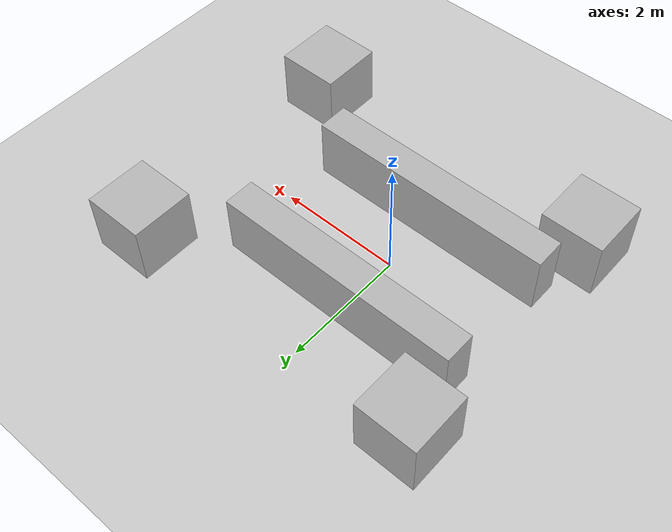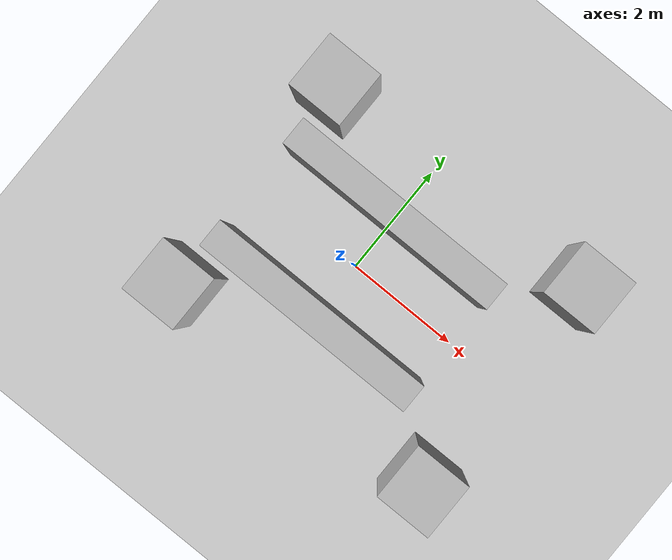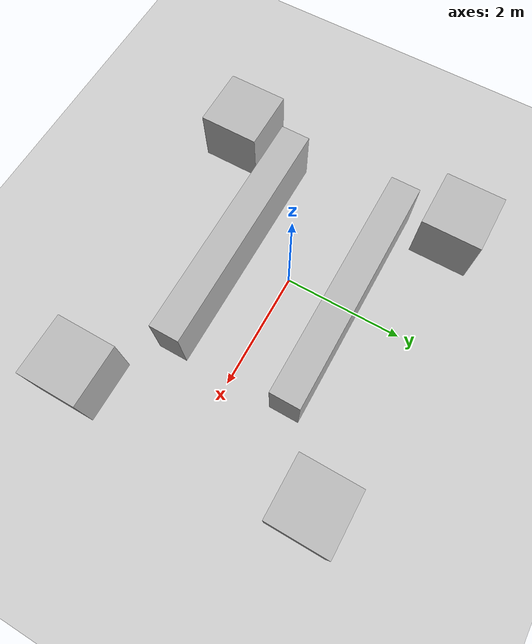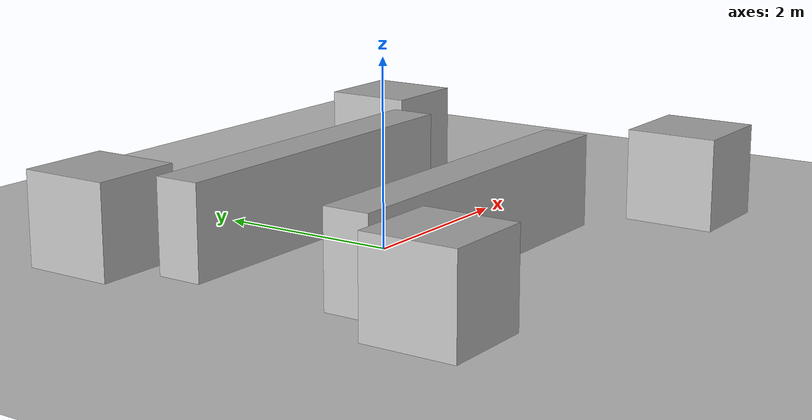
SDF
<?xml version="1.0" ?>
<sdf version="1.8">
  <world name="tfg_world">

    <!-- Luz -->
    <light type="directional" name="sun">
      <pose>0 0 10 0 0 0</pose>
      <diffuse>0.8 0.8 0.8 1</diffuse>
      <specular>0.2 0.2 0.2 1</specular>
      <direction>-0.5 0.1 -0.9</direction>
    </light>

    <!-- Suelo -->
    <model name="ground_plane">
      <static>true</static>
      <link name="link">
        <collision name="collision">
          <geometry>
            <plane>
              <normal>0 0 1</normal>
              <size>20 20</size>
            </plane>
          </geometry>
        </collision>
        <visual name="visual">
          <geometry>
            <plane>
              <normal>0 0 1</normal>
              <size>20 20</size>
            </plane>
          </geometry>
          <material>
            <ambient>0.8 0.8 0.8 1</ambient>
            <diffuse>0.8 0.8 0.8 1</diffuse>
          </material>
        </visual>
      </link>
    </model>

    <!-- Obstáculos -->
    <model name="box1">
      <static>true</static>
      <pose>-2 2 0.5 0 0 0</pose>
      <link name="link">
        <collision name="collision"><geometry><box><size>1 1 1</size></box></geometry></collision>
        <visual name="visual"><geometry><box><size>1 1 1</size></box></geometry></visual>
      </link>
    </model>

    <model name="box2">
      <static>true</static>
      <pose>-2 -2 0.5 0 0 0</pose>
      <link name="link">
        <collision name="collision"><geometry><box><size>1 1 1</size></box></geometry></collision>
        <visual name="visual"><geometry><box><size>1 1 1</size></box></geometry></visual>
      </link>
    </model>

    <model name="wall1">
      <static>true</static>
      <pose>0 1 0.5 0 0 0</pose>
      <link name="link">
        <collision name="collision"><geometry><box><size>4 0.5 1</size></box></geometry></collision>
        <visual name="visual"><geometry><box><size>4 0.5 1</size></box></geometry></visual>
      </link>
    </model>

    <model name="wall2">
      <static>true</static>
      <pose>0 -1 0.5 0 0 0</pose>
      <link name="link">
        <collision name="collision"><geometry><box><size>4 0.5 1</size></box></geometry></collision>
        <visual name="visual"><geometry><box><size>4 0.5 1</size></box></geometry></visual>
      </link>
    </model>

    <model name="box3">
      <static>true</static>
      <pose>3 2 0.5 0 0 0</pose>
      <link name="link">
        <collision name="collision"><geometry><box><size>1 1 1</size></box></geometry></collision>
        <visual name="visual"><geometry><box><size>1 1 1</size></box></geometry></visual>
      </link>
    </model>

    <model name="box4">
      <static>true</static>
      <pose>3 -2 0.5 0 0 0</pose>
      <link name="link">
        <collision name="collision"><geometry><box><size>1 1 1</size></box></geometry></collision>
        <visual name="visual"><geometry><box><size>1 1 1</size></box></geometry></visual>
      </link>
    </model>

  </world>
</sdf>
